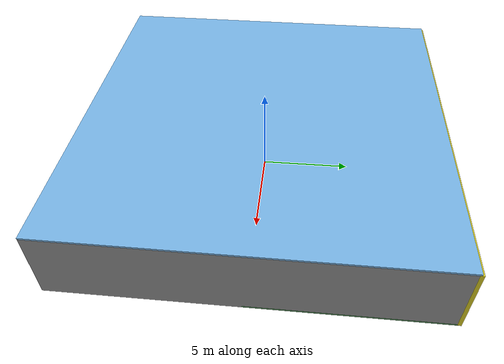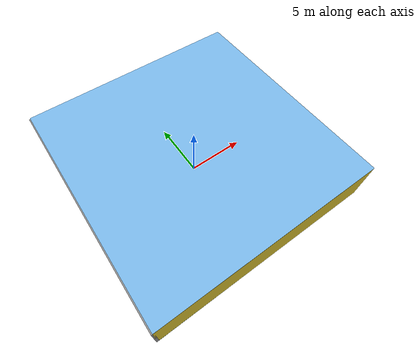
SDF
<sdf version="1.4">
 <world name="default">
  <physics type="ode">
   <max_step_size>0.001</max_step_size>
   <real_time_factor>1</real_time_factor>
   <real_time_update_rate>1000</real_time_update_rate>
   <gravity>0 0 -9.8</gravity>
  </physics>
  <scene><ambient>0.4 0.4 0.4 1</ambient><background>0.7 0.7 0.7 1</background><shadows>1</shadows></scene>
  <model name="Surrounding">
   <static>1</static>
   <link name="Ceiling">
    <collision name="Ceiling_Collision"><geometry><box><size>20 20 0.1</size></box></geometry></collision>
    <visual name="Ceiling_Visual">
     <geometry><box><size>20 20 0.1</size></box></geometry>
     <material>
      <script><uri>file://media/materials/scripts/gazebo.material</uri><name>Gazebo/SkyBlue</name></script>
     </material>
    </visual>
    <pose>0 0 4.05 0 0 0</pose>
   </link>
   <link name="Wall_South">
    <collision name="Wall_South_Collision">
     <geometry><box><size>20 0 4</size></box></geometry>
     <pose>0 0 2 0 -0 0</pose>
    </collision>
    <visual name="Wall_South_Visual">
     <pose>0 0 2 0 -0 0</pose>
     <geometry><box><size>20 0 4</size></box></geometry>
     <material>
      <script><uri>file://media/materials/scripts/gazebo.material</uri><name>Gazebo/ZincYellow</name></script>
     </material>
    </visual>
    <velocity_decay><linear>0</linear><angular>0</angular></velocity_decay>
    <pose>0 -10 0 0 -0 0</pose>
   </link>
   <link name="Wall_East">
    <collision name="Wall_21_Collision">
     <geometry><box><size>20 0 4</size></box></geometry>
     <pose>0 0 2 0 -0 0</pose>
    </collision>
    <visual name="Wall_21_Visual">
     <pose>0 0 2 0 -0 0</pose>
     <geometry><box><size>20 0 4</size></box></geometry>
     <material>
      <script><uri>file://media/materials/scripts/gazebo.material</uri><name>Gazebo/GreyGradientSky</name></script>
     </material>
    </visual>
    <velocity_decay><linear>0</linear><angular>0</angular></velocity_decay>
    <pose>10 0 0 0 -0 1.5708</pose>
   </link>
   <link name="Wall_North">
    <collision name="Wall_22_Collision">
     <geometry><box><size>20 0.2 4</size></box></geometry>
     <pose>0 0 2 0 -0 0</pose>
    </collision>
    <visual name="Wall_22_Visual">
     <pose>0 0 2 0 -0 0</pose>
     <geometry><box><size>20 0.2 4</size></box></geometry>
     <material>
      <script><uri>file://media/materials/scripts/gazebo.material</uri><name>Gazebo/YellowGlow</name></script>
     </material>
    </visual>
    <velocity_decay><linear>0</linear><angular>0</angular></velocity_decay>
    <pose>0 10 0 0 -0 0</pose>
   </link>
   <link name="Wall_West">
    <collision name="Wall_23_Collision">
     <geometry><box><size>20 0.2 4</size></box></geometry>
     <pose>0 0 2 0 -0 0</pose>
    </collision>
    <visual name="Wall_23_Visual">
     <pose>0 0 2 0 -0 0</pose>
     <geometry><box><size>20 0.2 4</size></box></geometry>
     <material>
      <script><uri>file://media/materials/scripts/gazebo.material</uri><name>Gazebo/GreyGradientSky</name></script>
     </material>
    </visual>
    <velocity_decay><linear>0</linear><angular>0</angular></velocity_decay>
    <pose>-10 0 0 0 0 -1.5708</pose>
   </link>
   <link name="Ground_link">
    <collision name="collision">
     <pose>0 0 .05 0 -0 0</pose>
     <geometry><box><size>20 20 0.1</size></box></geometry>
    </collision>
    <visual name="visual">
     <pose>0 0 .05 0 -0 0</pose>
     <geometry><box><size>20 20 0.1</size></box></geometry>
     <material>
      <script><uri>file://media/materials/scripts/gazebo.material</uri><name>Gazebo/GreenTransparent</name></script>
     </material>
    </visual>
   </link>
   <static>1</static>
  </model>
  <spherical_coordinates>
   <surface_model>EARTH_WGS84</surface_model>
   <latitude_deg>0</latitude_deg>
   <longitude_deg>0</longitude_deg>
   <elevation>0</elevation>
   <heading_deg>0</heading_deg>
  </spherical_coordinates>
  <light name="lightball_0" type="diffuse">
   <diffuse>0.8 0.8 0.8 1</diffuse>
   <specular>0.2 0.2 0.2 1</specular>
   <attenuation>
    <range>100</range>
    <constant>0.7</constant>
    <linear>0.01</linear>
    <quadratic>0.001</quadratic>
   </attenuation>
   <direction>-0.5 0.1 -0.9</direction>
   <pose>1.51754223235 -7.23489392593 1.96107094929 0 0 0</pose>
  </light>
  <light name="lightball_1" type="diffuse">
   <diffuse>0.8 0.8 0.8 1</diffuse>
   <specular>0.2 0.2 0.2 1</specular>
   <attenuation>
    <range>100</range>
    <constant>0.7</constant>
    <linear>0.01</linear>
    <quadratic>0.001</quadratic>
   </attenuation>
   <direction>-0.5 0.1 -0.9</direction>
   <pose>8.58044983436 -5.83314898084 0.70724753228 0 0 0</pose>
  </light>
  <light name="lightball_2" type="diffuse">
   <diffuse>0.8 0.8 0.8 1</diffuse>
   <specular>0.2 0.2 0.2 1</specular>
   <attenuation>
    <range>100</range>
    <constant>0.7</constant>
    <linear>0.01</linear>
    <quadratic>0.001</quadratic>
   </attenuation>
   <direction>-0.5 0.1 -0.9</direction>
   <pose>-6.39051659261 4.77858677151 0.895045180092 0 0 0</pose>
  </light>
  <light name="lightball_3" type="diffuse">
   <diffuse>0.8 0.8 0.8 1</diffuse>
   <specular>0.2 0.2 0.2 1</specular>
   <attenuation>
    <range>100</range>
    <constant>0.7</constant>
    <linear>0.01</linear>
    <quadratic>0.001</quadratic>
   </attenuation>
   <direction>-0.5 0.1 -0.9</direction>
   <pose>-2.34256233871 -6.45838726646 2.12109742973 0 0 0</pose>
  </light>
  <include><uri>model://cabinet</uri><pose>-6.7418954886 -4.87749801224 0 0 0 2.03463436642</pose></include>
  <include><uri>model://cabinet</uri><pose>0.70442680629 -1.78024101769 0 0 0 1.52223986096</pose></include>
  <include><uri>model://table</uri><pose>7.70029543583 -3.70713879013 0 0 0 2.46633046515</pose></include>
  <include>
   <uri>model://construction_cone</uri>
   <pose>7.49205748485 3.82094303772 0 0 0 1.39383331341</pose>
  </include>
 </world>
</sdf>

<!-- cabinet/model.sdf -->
<sdf version="1.5">
  <model name="cabinet">
    <static>true</static>
    <link name="cabinet_bottom_plate">
      <inertial>
        <pose>0 0 -1 0 0 0</pose>
        <inertia>
          <ixx>2.050000</ixx>
          <ixy>0</ixy>
          <ixz>0</ixz>
          <iyy>2.050000</iyy>
          <iyz>0</iyz>
          <izz>2.050000</izz>
        </inertia>
        <mass>25.000000</mass>
      </inertial>
      <collision name="cabinet_bottom_plate_geom">
        <pose>0 0 0.010000 0 0 0</pose>
        <geometry>
          <box>
            <size>0.450000 0.450000 0.020000</size>
          </box>
        </geometry>
      </collision>
      <visual name="cabinet_bottom_plate_geom_visual">
        <pose>0 0 0.010000 0 0 0</pose>
        <geometry>
          <box>
            <size>0.450000 0.450000 0.020000</size>
          </box>
        </geometry>
        <material>
          <script>
            <uri>model://media/materials/scripts/gazebo.material</uri>
            <name>Gazebo/Wood</name>
          </script>
        </material>
      </visual>
      <collision name="cabinet_bottom_plate_geom_cabinet_back_plate">
        <pose>0.235000 0 0.510000 0 0 0</pose>
        <geometry>
          <box>
            <size>0.020000 0.450000 1.020000</size>
          </box>
        </geometry>
      </collision>
      <visual name="cabinet_bottom_plate_geom_cabinet_back_plate_visual">
        <pose>0.235000 0 0.510000 0 0 0</pose>
        <geometry>
          <box>
            <size>0.020000 0.450000 1.020000</size>
          </box>
        </geometry>
        <material>
          <script>
            <uri>model://media/materials/scripts/gazebo.material</uri>
            <name>Gazebo/Wood</name>
          </script>
        </material>
      </visual>
      <collision name="cabinet_bottom_plate_geom_cabinet_left_plate">
        <pose>0 0.235000 0.510000 0 0 0</pose>
        <geometry>
          <box>
            <size>0.450000 0.020000 1.020000</size>
          </box>
        </geometry>
      </collision>
      <visual name="cabinet_bottom_plate_geom_cabinet_left_plate_visual">
        <pose>0 0.235000 0.510000 0 0 0</pose>
        <geometry>
          <box>
            <size>0.450000 0.020000 1.020000</size>
          </box>
        </geometry>
        <material>
          <script>
            <uri>model://media/materials/scripts/gazebo.material</uri>
            <name>Gazebo/Wood</name>
          </script>
        </material>
      </visual>
      <collision name="cabinet_bottom_plate_geom_cabinet_middle_plate">
        <pose>0 0 0.510000 0 0 0</pose>
        <geometry>
          <box>
            <size>0.450000 0.450000 0.020000</size>
          </box>
        </geometry>
      </collision>
      <visual name="cabinet_bottom_plate_geom_cabinet_middle_plate_visual">
        <pose>0 0 0.510000 0 0 0</pose>
        <geometry>
          <box>
            <size>0.450000 0.450000 0.020000</size>
          </box>
        </geometry>
        <material>
          <script>
            <uri>model://media/materials/scripts/gazebo.material</uri>
            <name>Gazebo/Wood</name>
          </script>
        </material>
      </visual>
      <collision name="cabinet_bottom_plate_geom_cabinet_right_plate">
        <pose>0 -0.235000 0.510000 0 0 0</pose>
        <geometry>
          <box>
            <size>0.450000 0.020000 1.020000</size>
          </box>
        </geometry>
      </collision>
      <visual name="cabinet_bottom_plate_geom_cabinet_right_plate_visual">
        <pose>0 -0.235000 0.510000 0 0 0</pose>
        <geometry>
          <box>
            <size>0.450000 0.020000 1.020000</size>
          </box>
        </geometry>
        <material>
          <script>
            <uri>model://media/materials/scripts/gazebo.material</uri>
            <name>Gazebo/Wood</name>
          </script>
        </material>
      </visual>
      <collision name="cabinet_bottom_plate_geom_cabinet_top_plate">
        <pose>0 0 1.010000 0 0 0</pose>
        <geometry>
          <box>
            <size>0.450000 0.450000 0.020000</size>
          </box>
        </geometry>
      </collision>
      <visual name="cabinet_bottom_plate_geom_cabinet_top_plate_visual">
        <pose>0 0 1.010000 0 0 0</pose>
        <geometry>
          <box>
            <size>0.450000 0.450000 0.020000</size>
          </box>
        </geometry>
        <material>
          <script>
            <uri>model://media/materials/scripts/gazebo.material</uri>
            <name>Gazebo/Wood</name>
          </script>
        </material>
      </visual>
    </link>
  </model>
</sdf>

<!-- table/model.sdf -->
<sdf version="1.5">
  <model name="table">
    <static>true</static>
    <link name="link">
      <collision name="surface">
        <pose>0 0 1.0 0 0 0</pose>
        <geometry>
          <box>
            <size>1.5 0.8 0.03</size>
          </box>
        </geometry>
        <surface>
          <friction>
            <ode>
              <mu>0.6</mu>
              <mu2>0.6</mu2>
            </ode>
          </friction>
        </surface>
      </collision>
      <visual name="visual1">
        <pose>0 0 1.0 0 0 0</pose>
        <geometry>
          <box>
            <size>1.5 0.8 0.03</size>
          </box>
        </geometry>
        <material>
          <script>
            <uri>model://media/materials/scripts/gazebo.material</uri>
            <name>Gazebo/Wood</name>
          </script>
        </material>
      </visual>
      <collision name="front_left_leg">
        <pose>0.68 0.38 0.5 0 0 0</pose>
        <geometry>
          <cylinder>
            <radius>0.02</radius>
            <length>1.0</length>
          </cylinder>
        </geometry>
      </collision>
      <visual name="front_left_leg">
        <pose>0.68 0.38 0.5 0 0 0</pose>
        <geometry>
          <cylinder>
            <radius>0.02</radius>
            <length>1.0</length>
          </cylinder>
        </geometry>
        <material>
          <script>
            <uri>model://media/materials/scripts/gazebo.material</uri>
            <name>Gazebo/Grey</name>
          </script>
        </material>
      </visual>
      <collision name="front_right_leg">
        <pose>0.68 -0.38 0.5 0 0 0</pose>
        <geometry>
          <cylinder>
            <radius>0.02</radius>
            <length>1.0</length>
          </cylinder>
        </geometry>
      </collision>
      <visual name="front_right_leg">
        <pose>0.68 -0.38 0.5 0 0 0</pose>
        <geometry>
          <cylinder>
            <radius>0.02</radius>
            <length>1.0</length>
          </cylinder>
        </geometry>
        <material>
          <script>
            <uri>model://media/materials/scripts/gazebo.material</uri>
            <name>Gazebo/Grey</name>
          </script>
        </material>
      </visual>
      <collision name="back_right_leg">
        <pose>-0.68 -0.38 0.5 0 0 0</pose>
        <geometry>
          <cylinder>
            <radius>0.02</radius>
            <length>1.0</length>
          </cylinder>
        </geometry>
      </collision>
      <visual name="back_right_leg">
        <pose>-0.68 -0.38 0.5 0 0 0</pose>
        <geometry>
          <cylinder>
            <radius>0.02</radius>
            <length>1.0</length>
          </cylinder>
        </geometry>
        <material>
          <script>
            <uri>model://media/materials/scripts/gazebo.material</uri>
            <name>Gazebo/Grey</name>
          </script>
        </material>
      </visual>
      <collision name="back_left_leg">
        <pose>-0.68 0.38 0.5 0 0 0</pose>
        <geometry>
          <cylinder>
            <radius>0.02</radius>
            <length>1.0</length>
          </cylinder>
        </geometry>
      </collision>
      <visual name="back_left_leg">
        <pose>-0.68 0.38 0.5 0 0 0</pose>
        <geometry>
          <cylinder>
            <radius>0.02</radius>
            <length>1.0</length>
          </cylinder>
        </geometry>
        <material>
          <script>
            <uri>model://media/materials/scripts/gazebo.material</uri>
            <name>Gazebo/Grey</name>
          </script>
        </material>
      </visual>
    </link>
  </model>
</sdf>

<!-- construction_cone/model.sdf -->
<sdf version="1.5">
  <model name="Construction Cone">
    <link name="link">
      <collision name="collision">
        <geometry>
          <mesh>
            <scale>10 10 10</scale>
            <uri>file://isr-testbed/construction_cone/meshes/construction_cone.dae</uri>
          </mesh>
        </geometry>
      </collision>
      <visual name="visual">
        <geometry>
          <mesh>
            <scale>10 10 10</scale>
            <uri>file://isr-testbed/construction_cone/meshes/construction_cone.dae</uri>
          </mesh>
        </geometry>
      </visual>
    </link>
  </model>
</sdf>
